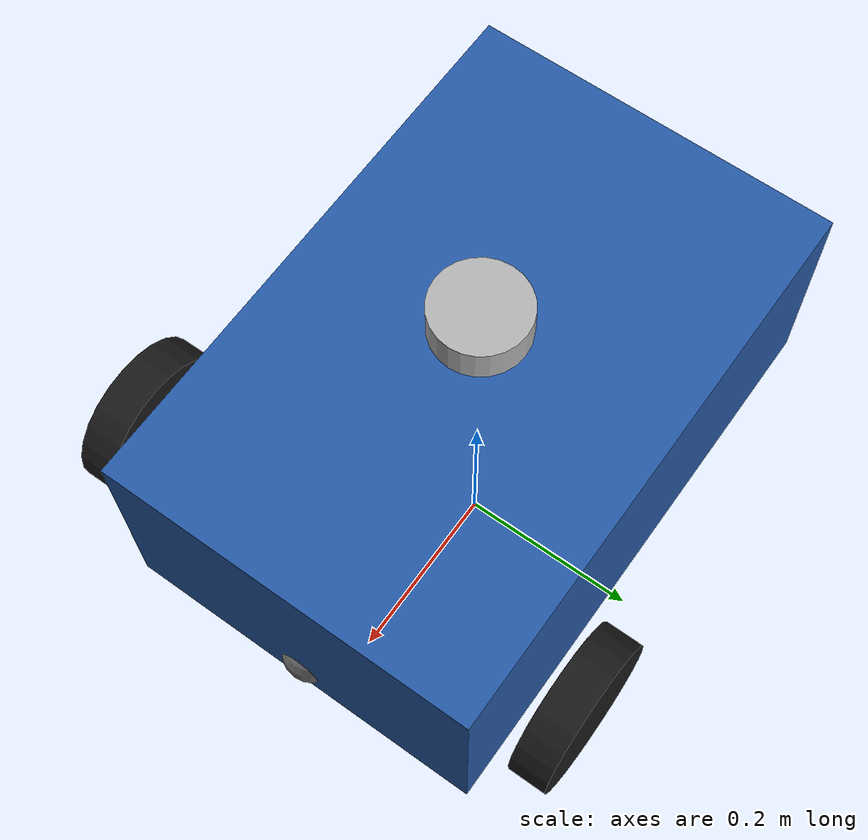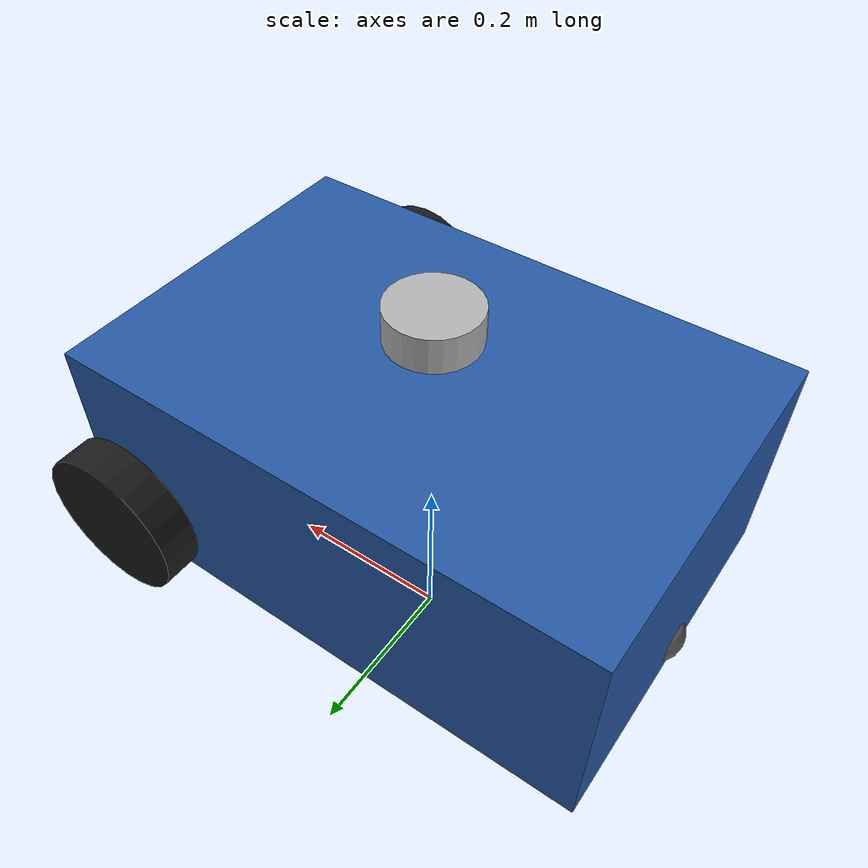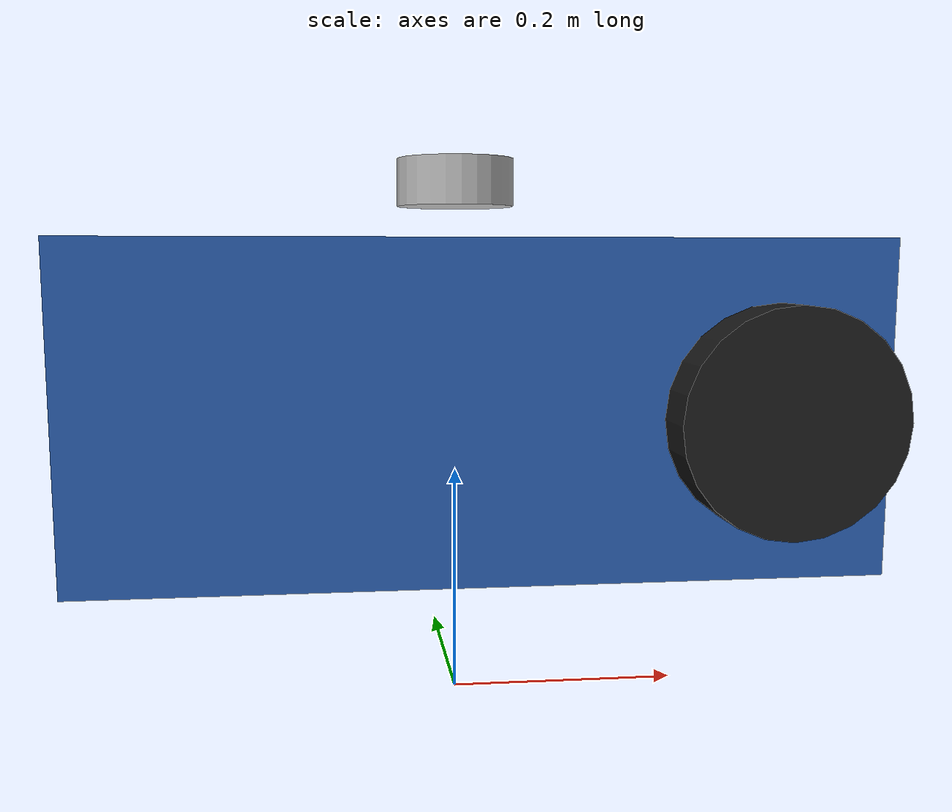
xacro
<?xml version="1.0"?>
<robot xmlns:xacro="http://www.ros.org/wiki/xacro" name="inspection_robot">

  <xacro:include filename="macros.xacro"/>
  <xacro:include filename="sensors.xacro"/>

  <!-- ===== Design Parameters ===== -->
  <xacro:property name="chassis_length" value="0.6"/>
  <xacro:property name="chassis_width" value="0.4"/>
  <xacro:property name="chassis_height" value="0.25"/>
  <xacro:property name="wheel_radius" value="0.08"/>
  <xacro:property name="wheel_width" value="0.04"/>
  <xacro:property name="wheel_x" value="0.20"/>   <!-- wheel longitudinal offset -->
  <xacro:property name="wheel_y" value="0.25"/>   <!-- wheel lateral offset from center -->
  <xacro:property name="caster_radius" value="0.03"/>
  <xacro:property name="caster_x" value="0.28"/>  <!-- caster longitudinal offset -->
  <xacro:property name="ground_clearance" value="0.07"/>
  <xacro:property name="base_mass" value="20.0"/>
  <xacro:property name="wheel_mass" value="1.0"/>
  <xacro:property name="caster_mass" value="0.3"/>

  <!-- ===== Materials ===== -->
  <material name="chassis_blue">
    <color rgba="0.15 0.35 0.65 1.0"/>
  </material>
  <material name="wheel_black">
    <color rgba="0.1 0.1 0.1 1.0"/>
  </material>
  <material name="caster_gray">
    <color rgba="0.4 0.4 0.4 1.0"/>
  </material>

  <!-- ===== Base Link (world frame reference) ===== -->
  <link name="base_link"/>

  <!-- ===== Chassis ===== -->
  <joint name="chassis_joint" type="fixed">
    <parent link="base_link"/>
    <child link="chassis"/>
    <origin xyz="0 0 ${wheel_radius + ground_clearance + chassis_height/2}" rpy="0 0 0"/>
  </joint>

  <link name="chassis">
    <visual>
      <origin xyz="0 0 0" rpy="0 0 0"/>
      <geometry>
        <box size="${chassis_length} ${chassis_width} ${chassis_height}"/>
      </geometry>
      <material name="chassis_blue"/>
    </visual>
    <collision>
      <origin xyz="0 0 0" rpy="0 0 0"/>
      <geometry>
        <box size="${chassis_length} ${chassis_width} ${chassis_height}"/>
      </geometry>
    </collision>
    <xacro:box_inertial mass="${base_mass}" x="${chassis_length}" y="${chassis_width}" z="${chassis_height}"/>
  </link>

  <gazebo reference="chassis">
    <mu1>1.0</mu1>
    <mu2>1.0</mu2>
    <material>Gazebo/Blue</material>
  </gazebo>

  <!-- ===== Left Wheel ===== -->
  <joint name="left_wheel_joint" type="continuous">
    <parent link="chassis"/>
    <child link="left_wheel"/>
    <origin xyz="${wheel_x} ${wheel_y} 0" rpy="${-pi/2} 0 0"/>
    <axis xyz="0 1 0"/>
    <limit effort="100" velocity="100"/>
    <dynamics damping="0.1" friction="0.1"/>
  </joint>

  <link name="left_wheel">
    <visual>
      <geometry>
        <cylinder radius="${wheel_radius}" length="${wheel_width}"/>
      </geometry>
      <material name="wheel_black"/>
    </visual>
    <collision>
      <geometry>
        <cylinder radius="${wheel_radius}" length="${wheel_width}"/>
      </geometry>
    </collision>
    <xacro:cylinder_inertial mass="${wheel_mass}" radius="${wheel_radius}" length="${wheel_width}"/>
  </link>

  <gazebo reference="left_wheel">
    <mu1>1.0</mu1>
    <mu2>1.0</mu2>
    <material>Gazebo/Black</material>
  </gazebo>

  <!-- ===== Right Wheel ===== -->
  <joint name="right_wheel_joint" type="continuous">
    <parent link="chassis"/>
    <child link="right_wheel"/>
    <origin xyz="${wheel_x} ${-wheel_y} 0" rpy="${-pi/2} 0 0"/>
    <axis xyz="0 -1 0"/>
    <limit effort="100" velocity="100"/>
    <dynamics damping="0.1" friction="0.1"/>
  </joint>

  <link name="right_wheel">
    <visual>
      <geometry>
        <cylinder radius="${wheel_radius}" length="${wheel_width}"/>
      </geometry>
      <material name="wheel_black"/>
    </visual>
    <collision>
      <geometry>
        <cylinder radius="${wheel_radius}" length="${wheel_width}"/>
      </geometry>
    </collision>
    <xacro:cylinder_inertial mass="${wheel_mass}" radius="${wheel_radius}" length="${wheel_width}"/>
  </link>

  <gazebo reference="right_wheel">
    <mu1>1.0</mu1>
    <mu2>1.0</mu2>
    <material>Gazebo/Black</material>
  </gazebo>

  <!-- ===== Front Caster ===== -->
  <joint name="front_caster_joint" type="fixed">
    <parent link="chassis"/>
    <child link="front_caster"/>
    <origin xyz="${caster_x} 0 ${-(chassis_height/2 - caster_radius)}" rpy="0 0 0"/>
  </joint>

  <link name="front_caster">
    <visual>
      <geometry>
        <sphere radius="${caster_radius}"/>
      </geometry>
      <material name="caster_gray"/>
    </visual>
    <collision>
      <geometry>
        <sphere radius="${caster_radius}"/>
      </geometry>
    </collision>
    <xacro:box_inertial mass="${caster_mass}" x="${2*caster_radius}" y="${2*caster_radius}" z="${2*caster_radius}"/>
  </link>

  <gazebo reference="front_caster">
    <mu1>0.01</mu1>
    <mu2>0.01</mu2>
    <material>Gazebo/Grey</material>
  </gazebo>

  <!-- ===== Rear Caster ===== -->
  <joint name="rear_caster_joint" type="fixed">
    <parent link="chassis"/>
    <child link="rear_caster"/>
    <origin xyz="${-caster_x} 0 ${-(chassis_height/2 - caster_radius)}" rpy="0 0 0"/>
  </joint>

  <link name="rear_caster">
    <visual>
      <geometry>
        <sphere radius="${caster_radius}"/>
      </geometry>
      <material name="caster_gray"/>
    </visual>
    <collision>
      <geometry>
        <sphere radius="${caster_radius}"/>
      </geometry>
    </collision>
    <xacro:box_inertial mass="${caster_mass}" x="${2*caster_radius}" y="${2*caster_radius}" z="${2*caster_radius}"/>
  </link>

  <gazebo reference="rear_caster">
    <mu1>0.01</mu1>
    <mu2>0.01</mu2>
    <material>Gazebo/Grey</material>
  </gazebo>

  <!-- ===== Sensors ===== -->
  <xacro:rgbd_camera name="front_camera" parent="chassis"
    xyz="${chassis_length/2 - 0.05} 0 ${chassis_height/4}"
    rpy="0 0 0"
    resolution_width="640" resolution_height="480" fps="30"/>

  <xacro:lidar_2d name="lidar" parent="chassis"
    xyz="0 0 ${chassis_height/2 + 0.05}"
    rpy="0 0 0"
    scan_samples="360" scan_range_min="0.15" scan_range_max="10.0"/>

  <xacro:imu_sensor name="imu" parent="chassis"
    xyz="0 0 0"
    rpy="0 0 0"/>

  <!-- ===== Gazebo Differential Drive Plugin ===== -->
  <gazebo>
    <plugin name="gazebo_ros_diff_drive" filename="libgazebo_ros_diff_drive.so">
      <ros>
        <namespace>/</namespace>
        <remapping>cmd_vel:=/cmd_vel</remapping>
        <remapping>odom:=/odom</remapping>
      </ros>

      <!-- Wheel configuration -->
      <left_joint>left_wheel_joint</left_joint>
      <right_joint>right_wheel_joint</right_joint>

      <!-- Kinematics -->
      <wheel_separation>${2 * wheel_y}</wheel_separation>
      <wheel_diameter>${2 * wheel_radius}</wheel_diameter>
      <max_wheel_torque>20.0</max_wheel_torque>
      <max_wheel_acceleration>5.0</max_wheel_acceleration>

      <!-- Odometry -->
      <odometry_frame>odom</odometry_frame>
      <robot_base_frame>base_link</robot_base_frame>
      <publish_odom>true</publish_odom>
      <publish_odom_tf>true</publish_odom_tf>
      <publish_wheel_tf>false</publish_wheel_tf>

      <!-- Update rate -->
      <update_rate>50</update_rate>

      <!-- Odometry topic -->
      <odometry_topic>/odom</odometry_topic>
    </plugin>
  </gazebo>

  <!-- ===== Static transforms ===== -->
  <!-- Robot state publisher will publish /tf from URDF joints -->

</robot>

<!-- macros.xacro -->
<robot xmlns:xacro="http://www.ros.org/wiki/xacro">

  <!-- ===== Common Macros ===== -->

  <!-- Inertial block macro -->
  <xacro:macro name="box_inertial" params="mass x y z">
    <inertial>
      <mass value="${mass}"/>
      <inertia
        ixx="${mass * (y*y + z*z) / 12}"
        iyy="${mass * (x*x + z*z) / 12}"
        izz="${mass * (x*x + y*y) / 12}"
        ixy="0.0" ixz="0.0" iyz="0.0"/>
    </inertial>
  </xacro:macro>

  <!-- Cylinder inertial macro -->
  <xacro:macro name="cylinder_inertial" params="mass radius length">
    <inertial>
      <mass value="${mass}"/>
      <inertia
        ixx="${mass * (3*radius*radius + length*length) / 12}"
        iyy="${mass * (3*radius*radius + length*length) / 12}"
        izz="${mass * radius*radius / 2}"
        ixy="0.0" ixz="0.0" iyz="0.0"/>
    </inertial>
  </xacro:macro>

  <!-- Gazebo color material macro -->
  <xacro:macro name="gazebo_color" params="name rgba">
    <gazebo reference="${name}">
      <material>Gazebo/${rgba}</material>
    </gazebo>
  </xacro:macro>

</robot>

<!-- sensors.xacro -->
<robot xmlns:xacro="http://www.ros.org/wiki/xacro">

  <xacro:include filename="macros.xacro"/>

  <!-- ===== RGB-D Camera ===== -->
  <xacro:macro name="rgbd_camera" params="name parent xyz rpy resolution_width resolution_height fps">
    <joint name="${name}_joint" type="fixed">
      <parent link="${parent}"/>
      <child link="${name}_link"/>
      <origin xyz="${xyz}" rpy="${rpy}"/>
    </joint>

    <link name="${name}_link">
      <visual>
        <origin xyz="0 0 0" rpy="0 0 0"/>
        <geometry>
          <box size="0.03 0.05 0.03"/>
        </geometry>
        <material name="dark_gray">
          <color rgba="0.2 0.2 0.2 1.0"/>
        </material>
      </visual>
      <xacro:box_inertial mass="0.05" x="0.03" y="0.05" z="0.03"/>
    </link>

    <!-- Camera sensor plugin -->
    <gazebo reference="${name}_link">
      <sensor type="camera" name="${name}_sensor">
        <update_rate>${fps}</update_rate>
        <camera name="${name}_camera">
          <horizontal_fov>1.04719755</horizontal_fov>  <!-- ~60 degrees -->
          <image>
            <width>${resolution_width}</width>
            <height>${resolution_height}</height>
            <format>R8G8B8</format>
          </image>
          <clip>
            <near>0.05</near>
            <far>10.0</far>
          </clip>
        </camera>
        <plugin name="${name}_plugin" filename="libgazebo_ros_camera.so">
          <ros>
            <namespace>/camera</namespace>
          </ros>
          <camera_name>${name}</camera_name>
          <frame_name>${name}_link</frame_name>
          <hack_baseline>0.07</hack_baseline>
        </plugin>
      </sensor>
    </gazebo>
  </xacro:macro>

  <!-- ===== 2D Lidar ===== -->
  <xacro:macro name="lidar_2d" params="name parent xyz rpy scan_samples scan_range_min scan_range_max">
    <joint name="${name}_joint" type="fixed">
      <parent link="${parent}"/>
      <child link="${name}_link"/>
      <origin xyz="${xyz}" rpy="${rpy}"/>
    </joint>

    <link name="${name}_link">
      <visual>
        <origin xyz="0 0 0" rpy="0 0 0"/>
        <geometry>
          <cylinder radius="0.05" length="0.04"/>
        </geometry>
        <material name="silver">
          <color rgba="0.7 0.7 0.7 1.0"/>
        </material>
      </visual>
      <xacro:cylinder_inertial mass="0.1" radius="0.05" length="0.04"/>
    </link>

    <gazebo reference="${name}_link">
      <sensor type="ray" name="${name}_sensor">
        <pose>0 0 0 0 0 0</pose>
        <ray>
          <scan>
            <horizontal>
              <samples>${scan_samples}</samples>
              <resolution>1</resolution>
              <min_angle>-3.14159</min_angle>
              <max_angle>3.14159</max_angle>
            </horizontal>
          </scan>
          <range>
            <min>${scan_range_min}</min>
            <max>${scan_range_max}</max>
            <resolution>0.015</resolution>
          </range>
        </ray>
        <plugin name="${name}_plugin" filename="libgazebo_ros_ray_sensor.so">
          <ros>
            <namespace>/lidar</namespace>
          </ros>
          <output_type>sensor_msgs/LaserScan</output_type>
          <frame_name>${name}_link</frame_name>
        </plugin>
      </sensor>
    </gazebo>
  </xacro:macro>

  <!-- ===== IMU ===== -->
  <xacro:macro name="imu_sensor" params="name parent xyz rpy">
    <joint name="${name}_joint" type="fixed">
      <parent link="${parent}"/>
      <child link="${name}_link"/>
      <origin xyz="${xyz}" rpy="${rpy}"/>
    </joint>

    <link name="${name}_link">
      <visual>
        <geometry>
          <box size="0.02 0.02 0.02"/>
        </geometry>
        <material name="blue">
          <color rgba="0.0 0.0 0.8 1.0"/>
        </material>
      </visual>
      <xacro:box_inertial mass="0.01" x="0.02" y="0.02" z="0.02"/>
    </link>

    <gazebo reference="${name}_link">
      <sensor type="imu" name="${name}_sensor">
        <update_rate>100</update_rate>
        <imu>
          <angular_velocity>
            <x>
              <noise type="gaussian">
                <mean>0.0</mean>
                <stddev>2e-4</stddev>
              </noise>
            </x>
            <y>
              <noise type="gaussian">
                <mean>0.0</mean>
                <stddev>2e-4</stddev>
              </noise>
            </y>
            <z>
              <noise type="gaussian">
                <mean>0.0</mean>
                <stddev>2e-4</stddev>
              </noise>
            </z>
          </angular_velocity>
          <linear_acceleration>
            <x>
              <noise type="gaussian">
                <mean>0.0</mean>
                <stddev>1.7e-2</stddev>
              </noise>
            </x>
            <y>
              <noise type="gaussian">
                <mean>0.0</mean>
                <stddev>1.7e-2</stddev>
              </noise>
            </y>
            <z>
              <noise type="gaussian">
                <mean>0.0</mean>
                <stddev>1.7e-2</stddev>
              </noise>
            </z>
          </linear_acceleration>
        </imu>
        <plugin name="${name}_plugin" filename="libgazebo_ros_imu_sensor.so">
          <ros>
            <namespace>/imu</namespace>
          </ros>
          <frame_name>${name}_link</frame_name>
        </plugin>
      </sensor>
    </gazebo>
  </xacro:macro>

</robot>
